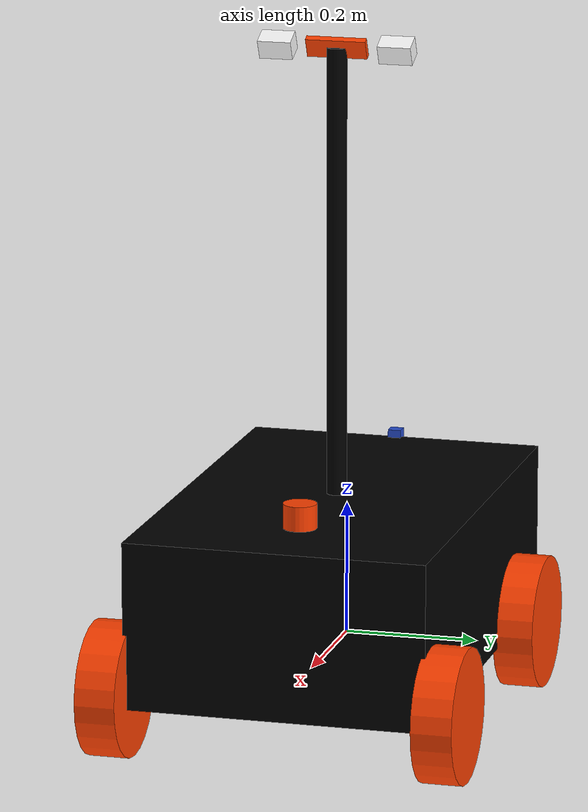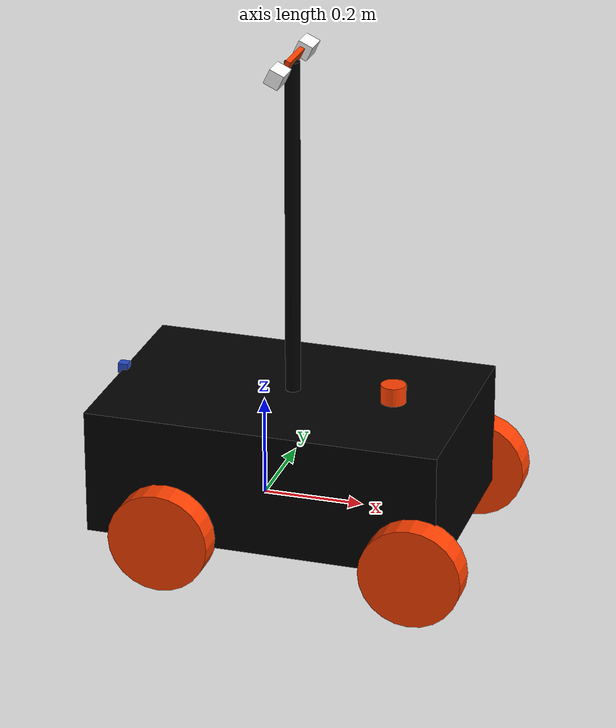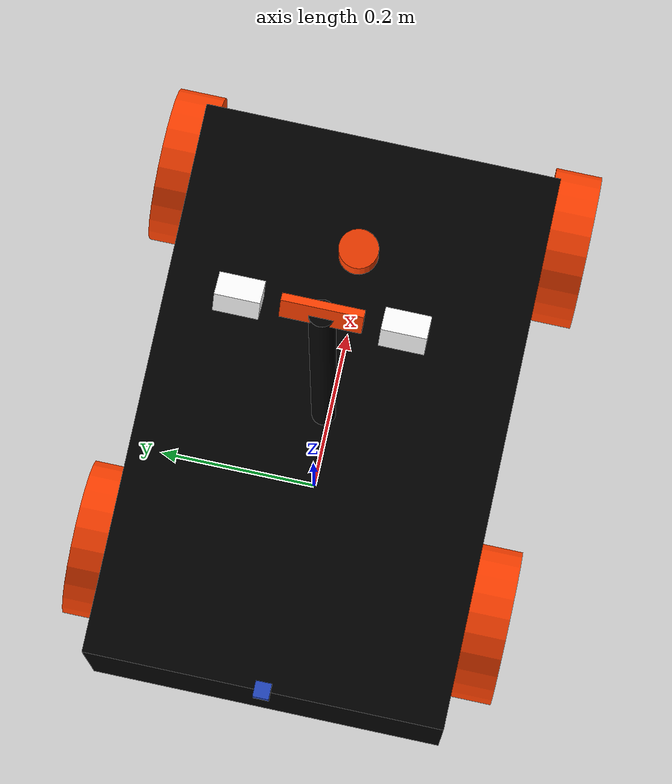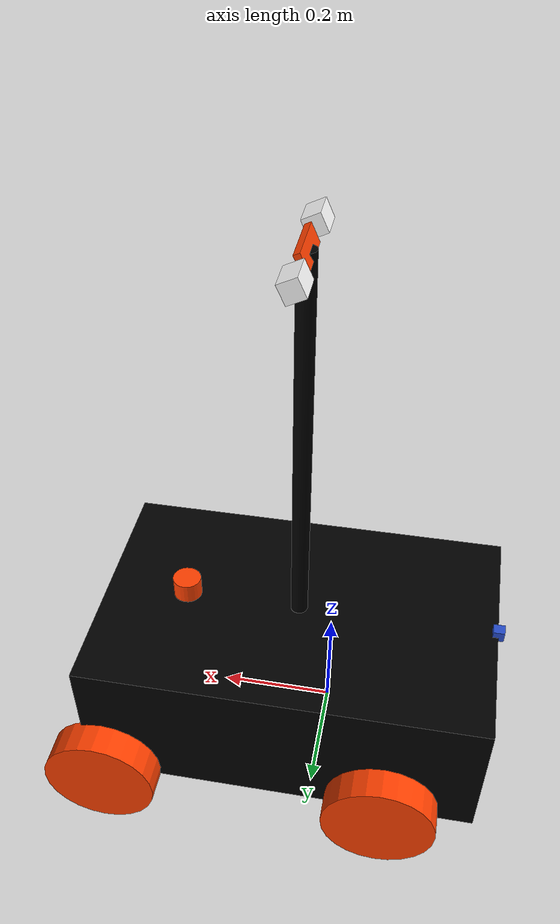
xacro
<?xml version="1.0"?>
<robot xmlns:xacro="http://www.ros.org/wiki/xacro"  name="robot">

    <xacro:arg name="use_ros2_control"              default="true"/>
    <xacro:arg name="use_ros2_control_gz_sim"       default="false"/>

    <!-- Robot_frames -->
    <xacro:include filename = "robot_main.xacro" />

    <!-- Controls -->
    <xacro:if value="$(arg use_ros2_control)">
        <xacro:include filename = "ros2_control.xacro" />
    </xacro:if>
    <xacro:unless value="$(arg use_ros2_control)">
        <xacro:include filename = "gz_diff_drive_control.xacro" />
    </xacro:unless>

    <!-- Sensors -->
    <xacro:include filename = "lidar.xacro" />
    <xacro:include filename="imu.xacro"/>
    <xacro:include filename = "camera.xacro" />
    <xacro:include filename = "depth_camera.xacro" />
    <xacro:include filename = "headlight.xacro" />

</robot>

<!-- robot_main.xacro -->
<robot xmlns:xacro="http://www.ros.org/wiki/xacro">

    <xacro:include filename="inertial_macros.xacro" />

    <xacro:property name="chassis_length"           value="0.700"/>
    <xacro:property name="chassis_width"            value="0.450"/>
    <xacro:property name="chassis_height"           value="0.250"/>
    <xacro:property name="chassis_mass"             value="19.700"/>

    <xacro:property name="wheel_radius"             value="0.100"/>
    <xacro:property name="wheel_thickness"          value="0.060"/>
    <xacro:property name="wheel_mass"               value="1.500"/>
    <xacro:property name="wheel_offset_x"           value="0.291"/>
    <xacro:property name="wheel_offset_y"           value="0.249"/>
    <xacro:property name="wheel_offset_z"           value="0.020"/>

    <!-- 500 mm wheelbase                                         -->
    <!-- Rear axle = -0.128 m                                     -->
    <!-- Front axle = +0.372 m                                    -->
    <!-- Wheelbase = 0.372 - (-0.128) = 0.500 m                  -->

    <xacro:property name="rear_wheel_x"             value="-0.128"/>
    <xacro:property name="front_wheel_x"            value="0.372"/>

    <!-- Colors -->
    <material name="white">
        <color rgba="1 1 1 1"/>
    </material>

    <material name="black">
        <color rgba="0 0 0 1"/>
    </material>

    <material name="orange">
        <color rgba="1 0.25 0 1"/>
    </material>

    <material name="cyan">
        <color rgba="0 1 1 1"/>
    </material>

    <material name="indigo">
        <color rgba="0.294 0 0.51 1"/>
    </material>

    <!-- convention (except base_link): joint followed by link -->

    <!-- BASE LINK                                                 -->

    <link name="base_link">
    </link>

    <!-- base_footprint -->
    <joint name="base_footprint_joint" type="fixed">
        <parent link="base_link"/>
        <child link="base_footprint"/>
        <origin xyz="0 0 0" rpy="0 0 0"/>
    </joint>

    <link name="base_footprint">
    </link>

    <!-- CHASSIS                                                   -->
    <!-- Keep physical chassis position exactly as Code 1        -->

    <joint name="chasis_joint" type="fixed">
        <parent link="base_link"/>
        <child link="chasis"/>
        <origin xyz="${-wheel_offset_x} 0 ${-wheel_offset_z}"/>
    </joint>

    <link name="chasis">

        <!-- VISUAL: unchanged from Code 1 -->
        <visual>
            <origin xyz="${chassis_length/2} 0 ${chassis_height/2}"
                    rpy="0 0 0"/>
            <geometry>
                <box size="${chassis_length} ${chassis_width} ${chassis_height}"/>
            </geometry>
            <material name="black"/>
        </visual>

        <!-- COLLISION: unchanged from Code 1 -->
        <collision>
            <origin xyz="${chassis_length/2} 0 ${chassis_height/2}"
                    rpy="0 0 0"/>
            <geometry>
                <box size="${chassis_length} ${chassis_width} ${chassis_height}"/>
            </geometry>
        </collision>

        <!-- INERTIAL                                                -->
        <!-- Code 1 COM relative to rear axle: +0.059 m            -->
        <!-- New rear axle: -0.128 m                                -->
        <!-- Therefore COM = -0.128 + 0.059 = -0.069 m             -->
        <!-- Chassis link itself starts at -0.291 m relative to     -->
        <!-- base_link, so local inertial COM must be:              -->

        <xacro:inertial_box
            mass="${chassis_mass}"
            x="${chassis_length}"
            y="${chassis_width}"
            z="${chassis_height}">
            <origin xyz="0.222 0 ${chassis_height/2}"
                    rpy="0 0 0"/>
        </xacro:inertial_box>

    </link>

    <gazebo reference="chasis">
        <material>Gazebo/Black</material>
    </gazebo>

    <!-- REAR LEFT WHEEL                                           -->

    <joint name="left_rear_wheel_joint" type="continuous">
        <parent link="base_link"/>
        <child link="left_rear_wheel"/>
        <origin xyz="${rear_wheel_x} ${wheel_offset_y} 0"
                rpy="${pi/2} 0 0"/>
        <axis xyz="0 0 -1"/>
    </joint>

    <link name="left_rear_wheel">

        <visual>
            <geometry>
                <cylinder radius="${wheel_radius}"
                          length="${wheel_thickness}"/>
            </geometry>
            <material name="orange"/>
        </visual>

        <collision>
            <geometry>
                <sphere radius="${wheel_radius}"/>
            </geometry>
        </collision>

        <xacro:inertial_cylinder
            mass="${wheel_mass}"
            radius="${wheel_radius}"
            length="${wheel_thickness}">
            <origin xyz="0 0 0" rpy="0 0 0"/>
        </xacro:inertial_cylinder>

    </link>

    <gazebo reference="left_rear_wheel">
        <material>Gazebo/Orange</material>
    </gazebo>

    <!-- REAR RIGHT WHEEL                                          -->

    <joint name="right_rear_wheel_joint" type="continuous">
        <parent link="base_link"/>
        <child link="right_rear_wheel"/>
        <origin xyz="${rear_wheel_x} ${-wheel_offset_y} 0"
                rpy="${pi/2} 0 0"/>
        <axis xyz="0 0 -1"/>
    </joint>

    <link name="right_rear_wheel">

        <visual>
            <geometry>
                <cylinder radius="${wheel_radius}"
                          length="${wheel_thickness}"/>
            </geometry>
            <material name="orange"/>
        </visual>

        <collision>
            <geometry>
                <sphere radius="${wheel_radius}"/>
            </geometry>
        </collision>

        <xacro:inertial_cylinder
            mass="${wheel_mass}"
            radius="${wheel_radius}"
            length="${wheel_thickness}">
            <origin xyz="0 0 0" rpy="0 0 0"/>
        </xacro:inertial_cylinder>

    </link>

    <gazebo reference="right_rear_wheel">
        <material>Gazebo/Orange</material>
    </gazebo>

    <!-- FRONT LEFT WHEEL                                          -->

    <joint name="left_front_wheel_joint" type="continuous">
        <parent link="base_link"/>
        <child link="left_front_wheel"/>
        <origin xyz="${front_wheel_x} ${wheel_offset_y} 0"
                rpy="${pi/2} 0 0"/>
        <axis xyz="0 0 -1"/>
    </joint>

    <link name="left_front_wheel">

        <visual>
            <geometry>
                <cylinder radius="${wheel_radius}"
                          length="${wheel_thickness}"/>
            </geometry>
            <material name="orange"/>
        </visual>

        <collision>
            <geometry>
                <sphere radius="${wheel_radius}"/>
            </geometry>
        </collision>

        <xacro:inertial_cylinder
            mass="${wheel_mass}"
            radius="${wheel_radius}"
            length="${wheel_thickness}">
            <origin xyz="0 0 0" rpy="0 0 0"/>
        </xacro:inertial_cylinder>

    </link>

    <gazebo reference="left_front_wheel">
        <material>Gazebo/Orange</material>
    </gazebo>

    <!-- FRONT RIGHT WHEEL                                         -->

    <joint name="right_front_wheel_joint" type="continuous">
        <parent link="base_link"/>
        <child link="right_front_wheel"/>
        <origin xyz="${front_wheel_x} ${-wheel_offset_y} 0"
                rpy="${pi/2} 0 0"/>
        <axis xyz="0 0 -1"/>
    </joint>

    <link name="right_front_wheel">

        <visual>
            <geometry>
                <cylinder radius="${wheel_radius}"
                          length="${wheel_thickness}"/>
            </geometry>
            <material name="orange"/>
        </visual>

        <collision>
            <geometry>
                <sphere radius="${wheel_radius}"/>
            </geometry>
        </collision>

        <xacro:inertial_cylinder
            mass="${wheel_mass}"
            radius="${wheel_radius}"
            length="${wheel_thickness}">
            <origin xyz="0 0 0" rpy="0 0 0"/>
        </xacro:inertial_cylinder>

    </link>

    <gazebo reference="right_front_wheel">
        <material>Gazebo/Orange</material>
    </gazebo>

    <!-- Caster wheel removed -->

</robot>

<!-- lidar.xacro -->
<robot xmlns:xacro="http://www.ros.org/wiki/xacro" name="robot">

    <xacro:property name="lidar_radius"       value="0.025"/>
    <xacro:property name="lidar_thickness"    value="0.040"/>

    <!-- LiDAR mounted forward on the chassis -->
    <xacro:property name="lidar_offset_x"     value="0.553"/>
    <xacro:property name="lidar_offset_z"     value="0.267"/>

    <!-- LiDAR -->
    <joint name="lidar_joint" type="fixed">
        <parent link="chasis"/>
        <child link="lidar_frame"/>
        <origin xyz="${lidar_offset_x} 0.0 ${lidar_offset_z}"
                rpy="0 0 ${pi}"/>
    </joint>

    <link name="lidar_frame">

        <visual>
            <geometry>
                <cylinder radius="${lidar_radius}"
                           length="${lidar_thickness}"/>
            </geometry>
            <material name="orange"/>
        </visual>

        <collision>
            <geometry>
                <cylinder radius="${lidar_radius}"
                           length="${lidar_thickness}"/>
            </geometry>
        </collision>

        <xacro:inertial_cylinder
            mass="0.1"
            radius="${lidar_radius}"
            length="${lidar_thickness}">
            <origin xyz="0 0 0" rpy="0 0 0"/>
        </xacro:inertial_cylinder>

    </link>

    <!-- LiDAR in Gazebo -->
    <gazebo reference="lidar_frame">

        <sensor name="lidar" type="gpu_lidar">

            <gz_frame_id>lidar_frame</gz_frame_id>
            <pose>0 0 0 0 0 0</pose>

            <topic>scan</topic>
            <update_rate>10</update_rate>
            <always_on>1</always_on>
            <visualize>true</visualize>

            <lidar>

                <scan>

                    <horizontal>
                        <samples>360</samples>
                        <resolution>1</resolution>
                        <min_angle>-3.14159</min_angle>
                        <max_angle>3.14159</max_angle>
                    </horizontal>

                    <vertical>
                        <samples>1</samples>
                        <resolution>0.1</resolution>
                        <min_angle>0.</min_angle>
                        <max_angle>0.</max_angle>
                    </vertical>

                </scan>

                <range>
                    <min>0.08</min>
                    <max>10.0</max>
                    <resolution>0.01</resolution>
                </range>

                <noise>
                    <type>gaussian</type>
                    <mean>0.0</mean>
                    <stddev>0.01</stddev>
                </noise>

            </lidar>

        </sensor>

    </gazebo>

</robot>

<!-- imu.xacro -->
<robot xmlns:xacro="http://www.ros.org/wiki/xacro" name="robot">

    <xacro:property name="imu_offset_x" value="0.0"/>
    <xacro:property name="imu_offset_y" value="0.0"/>
    <xacro:property name="imu_offset_z" value="0.252"/>

    <!-- IMU Joint -->
    <joint name="imu_joint" type="fixed">
        <parent link="chasis"/>
        <child link="imu_link"/>
        <origin xyz="${imu_offset_x} ${imu_offset_y} ${imu_offset_z}"
                rpy="0 0 0"/>
    </joint>

    <!-- IMU Link -->
    <link name="imu_link">
        <visual>
            <geometry>
                <box size="0.02 0.02 0.02"/>
            </geometry>
            <material name="blue"/>
        </visual>

        <collision>
            <geometry>
                <box size="0.02 0.02 0.02"/>
            </geometry>
        </collision>

        <inertial>
            <mass value="0.01"/>
            <origin xyz="0 0 0"/>
            <inertia
                ixx="1e-6"
                ixy="0"
                ixz="0"
                iyy="1e-6"
                iyz="0"
                izz="1e-6"/>
        </inertial>
    </link>

    <!-- Gazebo IMU -->
    <gazebo reference="imu_link">
        <sensor name="imu_sensor" type="imu">
            <always_on>true</always_on>
            <update_rate>100</update_rate>
            <visualize>false</visualize>
            <topic>imu</topic>
            <gz_frame_id>imu_link</gz_frame_id>
            <imu>
                <angular_velocity>
                    <x><noise type="gaussian"><mean>0.0</mean><stddev>0.0002</stddev></noise></x>
                    <y><noise type="gaussian"><mean>0.0</mean><stddev>0.0002</stddev></noise></y>
                    <z><noise type="gaussian"><mean>0.0</mean><stddev>0.0002</stddev></noise></z>
                </angular_velocity>
                <linear_acceleration>
                    <x><noise type="gaussian"><mean>0.0</mean><stddev>0.017</stddev></noise></x>
                    <y><noise type="gaussian"><mean>0.0</mean><stddev>0.017</stddev></noise></y>
                    <z><noise type="gaussian"><mean>0.0</mean><stddev>0.017</stddev></noise></z>
                </linear_acceleration>
            </imu>
        </sensor>
    </gazebo></robot>

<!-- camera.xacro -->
<robot xmlns:xacro="http://www.ros.org/wiki/xacro" name="robot">

    <!-- MAST                                                      -->

    <!-- Chassis center is approximately X = +0.059 m -->
    <xacro:property name="mast_x"              value="0.059"/>
    <xacro:property name="mast_y"              value="0.0"/>

    <!-- Ground = -0.100 m in base_link coordinates -->
    <!-- Chassis top = +0.230 m -->
    <!-- Camera = +0.900 m -->
    <!-- Mast height = 0.900 - 0.230 = 0.670 m -->

    <xacro:property name="mast_height"         value="0.670"/>
    <xacro:property name="mast_radius"         value="0.015"/>

    <!-- MAST BASE                                                 -->

    <joint name="mast_joint" type="fixed">
        <parent link="chasis"/>
        <child link="mast_link"/>

        <!-- Chassis top = local z 0.250 -->
        <origin xyz="${mast_x - (-0.291)} 0.0 0.250"
                rpy="0 0 0"/>
    </joint>

    <link name="mast_link">

        <visual>
            <origin xyz="0 0 ${mast_height/2}"
                    rpy="0 0 0"/>

            <geometry>
                <cylinder radius="${mast_radius}"
                          length="${mast_height}"/>
            </geometry>

            <material name="black"/>
        </visual>

        <collision>
            <origin xyz="0 0 ${mast_height/2}"
                    rpy="0 0 0"/>

            <geometry>
                <cylinder radius="${mast_radius}"
                          length="${mast_height}"/>
            </geometry>
        </collision>

        <xacro:inertial_cylinder
            mass="0.5"
            radius="${mast_radius}"
            length="${mast_height}">

            <origin xyz="0 0 ${mast_height/2}"
                    rpy="0 0 0"/>

        </xacro:inertial_cylinder>

    </link>

    <gazebo reference="mast_link">
        <material>Gazebo/Black</material>
    </gazebo>

</robot>

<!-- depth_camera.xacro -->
<robot xmlns:xacro="http://www.ros.org/wiki/xacro" name="robot">

    <!-- RGBD CAMERA                                               -->

    <xacro:property name="RGBD_length"       value="0.01"/>
    <xacro:property name="RGBD_width"        value="0.09"/>
    <xacro:property name="RGBD_height"       value="0.03"/>

    <!-- Camera is mounted at the top of the mast -->
    <xacro:property name="mast_height"       value="0.670"/>

    <!-- RGBD CAMERA MOUNT                                         -->

    <joint name="camera_joint" type="fixed">

    <parent link="mast_link"/>
    <child link="camera_link"/>

    <!-- Camera center at top of mast, tilted 25° down to
        eliminate near-field blind spot at inspection range -->
    <origin xyz="0 0 ${mast_height}"
            rpy="0 0.436 0"/>

    </joint>

    <link name="camera_link">

        <visual>
            <geometry>
                <box size="${RGBD_length}
                           ${RGBD_width}
                           ${RGBD_height}"/>
            </geometry>

            <material name="orange"/>
        </visual>

    </link>

    <!-- CAMERA OPTICAL FRAME                                     -->

    <joint name="camera_optical_joint" type="fixed">

        <parent link="camera_link"/>
        <child link="camera_link_optical"/>

        <origin xyz="0.0 0.0 0.0"
                rpy="${-pi/2} 0 ${-pi/2}"/>

    </joint>

    <link name="camera_link_optical">
    </link>

    <!-- RGBD CAMERA IN GAZEBO                                    -->

    <gazebo reference="camera_link">

        <sensor name="camera" type="rgbd_camera">

            <gz_frame_id>camera_link</gz_frame_id>
            <frame_id>camera_link_optical</frame_id>

            <pose>0 0 0 0 0 0</pose>

            <topic>camera/depth/image_raw</topic>

            <update_rate>10</update_rate>

            <always_on>1</always_on>

            <visualize>true</visualize>

            <camera>

                <horizontal_fov>2.0944</horizontal_fov>

                <image>
                    <format>R8G8B8</format>
                    <width>640</width>
                    <height>480</height>
                </image>

                <clip>
                    <near>0.05</near>
                    <far>12.0</far>
                </clip>

            </camera>

        </sensor>

    </gazebo>

</robot>

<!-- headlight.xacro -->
<robot xmlns:xacro="http://www.ros.org/wiki/xacro" name="robot">

  <xacro:macro name="headlight" params="name y">

    <joint name="${name}_joint" type="fixed">
      <parent link="mast_link"/>
      <child link="${name}_link"/>
      <origin xyz="0 ${y} ${mast_height}" rpy="0 0.436 0"/>
    </joint>

    <!-- keep this joint so the light is not merged away when URDF is converted to SDF -->
    <gazebo reference="${name}_joint">
      <preserveFixedJoint>true</preserveFixedJoint>
    </gazebo>

    <!-- small visual housing, no collision, sits well above the lidar scan plane -->
    <link name="${name}_link">
      <visual>
        <geometry><box size="0.03 0.05 0.03"/></geometry>
        <material name="white"/>
      </visual>
      <inertial>
        <origin xyz="0 0 0" rpy="0 0 0"/>
        <mass value="0.01"/>
        <inertia ixx="2e-6" ixy="0" ixz="0" iyy="2e-6" iyz="0" izz="2e-6"/>
      </inertial>
    </link>

    <gazebo reference="${name}_link">
      <light name="${name}" type="spot">
        <pose>0.02 0 0 0 0 0</pose>
        <cast_shadows>false</cast_shadows>
        <diffuse>1.0 0.97 0.9 1</diffuse>
        <specular>0.05 0.05 0.05 1</specular>
        <intensity>1.5</intensity>

        <!-- Hide Gazebo's green light visualization gizmo -->
        <visualize>false</visualize>

        <direction>1 0 0</direction>

        <attenuation>
          <range>8</range>
          <constant>0.3</constant>
          <linear>0.08</linear>
          <quadratic>0.02</quadratic>
        </attenuation>

        <spot>
          <inner_angle>0.5</inner_angle>
          <outer_angle>1.3</outer_angle>
          <falloff>1.0</falloff>
        </spot>
      </light>
    </gazebo>

  </xacro:macro>

  <xacro:headlight name="headlight_left"  y="0.09"/>
  <xacro:headlight name="headlight_right" y="-0.09"/>

</robot>
